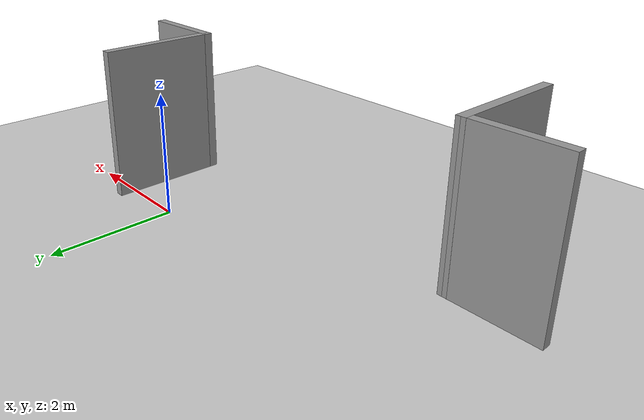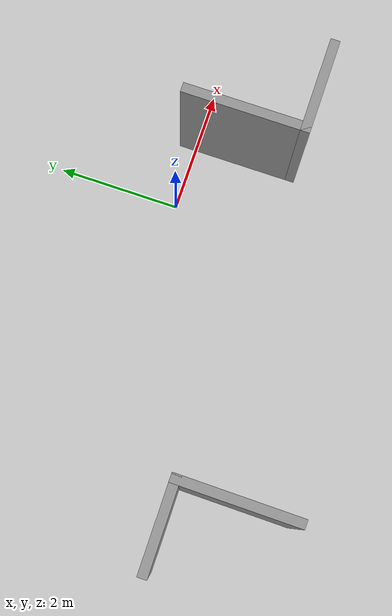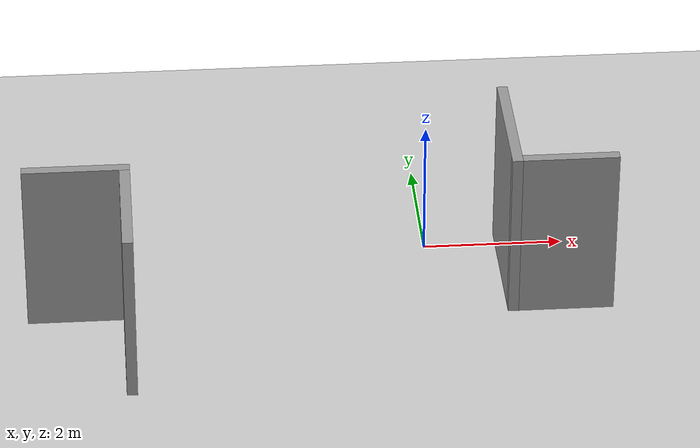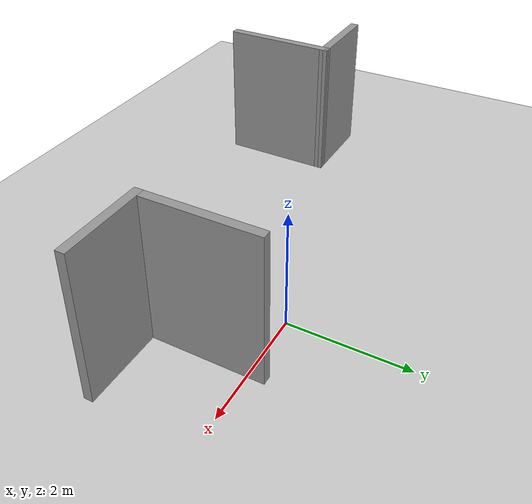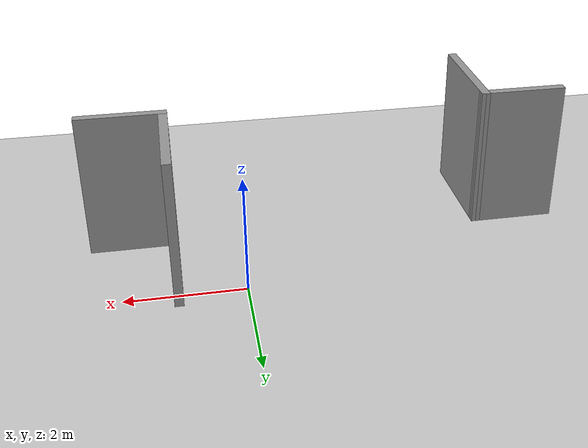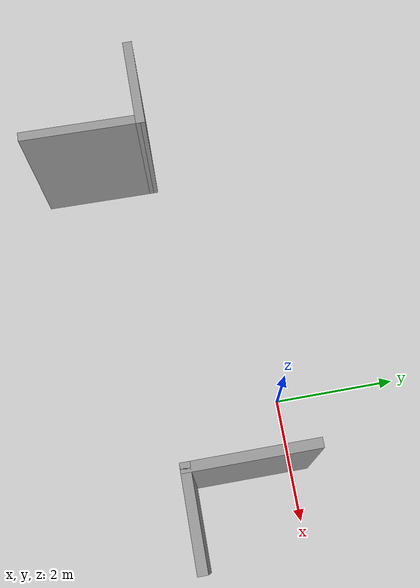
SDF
<sdf version="1.6">
 <world name="default">
  <light name="sun" type="directional">
   <pose>0 0 10 0 -0 0</pose>
   <diffuse>0.8 0.8 0.8 1</diffuse>
   <specular>0.2 0.2 0.2 1</specular>
   <attenuation>
    <range>1000</range>
    <constant>0.9</constant>
    <linear>0.01</linear>
    <quadratic>0.001</quadratic>
   </attenuation>
   <direction>-0.5 0.1 -0.9</direction>
  </light>
  <model name="ground_plane">
   <static>1</static>
   <link name="link">
    <collision name="collision">
     <geometry><plane><normal>0 0 1</normal><size>100 100</size></plane></geometry>
     <surface>
      <contact><collide_bitmask>65535</collide_bitmask></contact>
      <friction><ode><mu>100</mu><mu2>50</mu2></ode></friction>
     </surface>
    </collision>
    <visual name="visual">
     <cast_shadows>0</cast_shadows>
     <geometry><plane><normal>0 0 1</normal><size>100 100</size></plane></geometry>
     <material>
      <script><uri>file://media/materials/scripts/gazebo.material</uri><name>Gazebo/Grey</name></script>
     </material>
    </visual>
   </link>
  </model>
  <gravity>0 0 -9.8</gravity>
  <magnetic_field>6e-06 2.3e-05 -4.2e-05</magnetic_field>
  <atmosphere type="adiabatic"/>
  <physics name="default_physics" default="0" type="ode">
   <max_step_size>0.001</max_step_size>
   <real_time_factor>1</real_time_factor>
   <real_time_update_rate>1000</real_time_update_rate>
  </physics>
  <scene><ambient>0.4 0.4 0.4 1</ambient><background>0.7 0.7 0.7 1</background><shadows>1</shadows></scene>
  <spherical_coordinates>
   <surface_model>EARTH_WGS84</surface_model>
   <latitude_deg>0</latitude_deg>
   <longitude_deg>0</longitude_deg>
   <elevation>0</elevation>
   <heading_deg>0</heading_deg>
  </spherical_coordinates>
  <model name="px4_planner1">
   <pose>-1.60591 -1.55182 0 0 -0 0</pose>
   <link name="Wall_2">
    <collision name="Wall_2_Collision">
     <geometry><box><size>1.98484 0.15 2.5</size></box></geometry>
     <pose>0 0 1.25 0 -0 0</pose>
    </collision>
    <visual name="Wall_2_Visual">
     <pose>0 0 1.25 0 -0 0</pose>
     <geometry><box><size>1.98484 0.15 2.5</size></box></geometry>
     <material>
      <script><uri>file://media/materials/scripts/gazebo.material</uri><name>Gazebo/Grey</name></script>
      <ambient>1 1 1 1</ambient>
     </material>
     <meta><layer>0</layer></meta>
    </visual>
    <pose>-2.72425 -0.83756 0 0 -0 1.56359</pose>
   </link>
   <link name="Wall_6">
    <collision name="Wall_6_Collision">
     <geometry><box><size>1.5 0.15 2.5</size></box></geometry>
     <pose>0 0 1.25 0 -0 0</pose>
    </collision>
    <visual name="Wall_6_Visual">
     <pose>0 0 1.25 0 -0 0</pose>
     <geometry><box><size>1.5 0.15 2.5</size></box></geometry>
     <material>
      <script><uri>file://media/materials/scripts/gazebo.material</uri><name>Gazebo/Grey</name></script>
      <ambient>1 1 1 1</ambient>
     </material>
     <meta><layer>0</layer></meta>
    </visual>
    <pose>3.39264 -0.094506 0 0 -0 3.14159</pose>
   </link>
   <link name="Wall_7">
    <collision name="Wall_7_Collision">
     <geometry><box><size>2 0.15 2.5</size></box></geometry>
     <pose>0 0 1.25 0 -0 0</pose>
    </collision>
    <visual name="Wall_7_Visual">
     <pose>0 0 1.25 0 -0 0</pose>
     <geometry><box><size>2 0.15 2.5</size></box></geometry>
     <material>
      <script><uri>file://media/materials/scripts/gazebo.material</uri><name>Gazebo/Grey</name></script>
      <ambient>1 1 1 1</ambient>
     </material>
     <meta><layer>0</layer></meta>
    </visual>
    <pose>2.71764 0.830494 0 0 -0 1.5708</pose>
   </link>
   <link name="Wall_9">
    <collision name="Wall_9_Collision">
     <geometry><box><size>1.5 0.15 2.5</size></box></geometry>
     <pose>0 0 1.25 0 -0 0</pose>
    </collision>
    <visual name="Wall_9_Visual">
     <pose>0 0 1.25 0 -0 0</pose>
     <geometry><box><size>1.5 0.15 2.5</size></box></geometry>
     <material>
      <script><uri>file://media/materials/scripts/gazebo.material</uri><name>Gazebo/Grey</name></script>
      <ambient>1 1 1 1</ambient>
     </material>
     <meta><layer>0</layer></meta>
    </visual>
    <pose>-3.39264 0.079836 0 0 -0 3.14159</pose>
   </link>
   <static>1</static>
  </model>
 </world>
</sdf>
